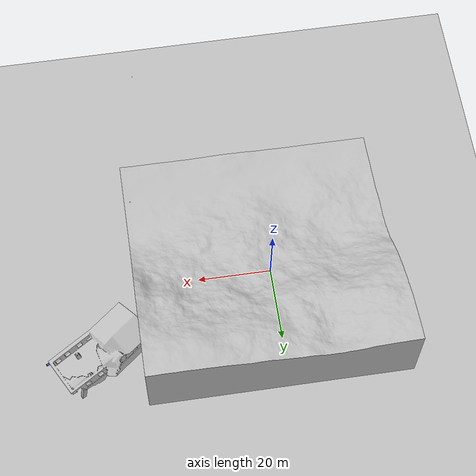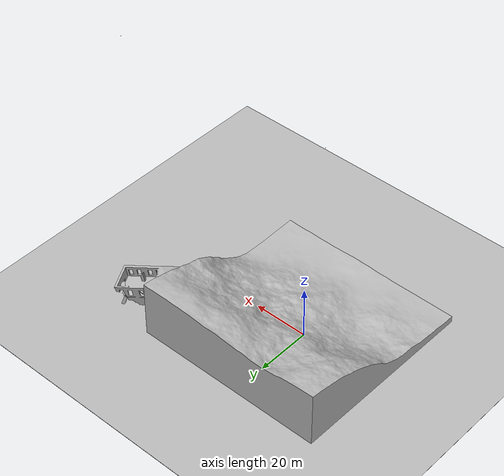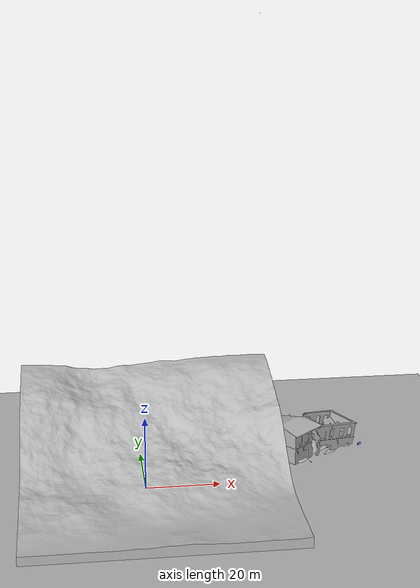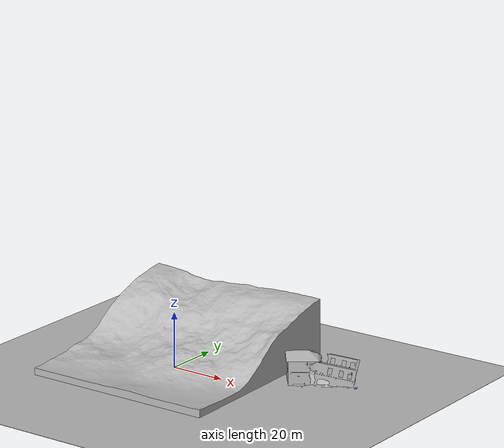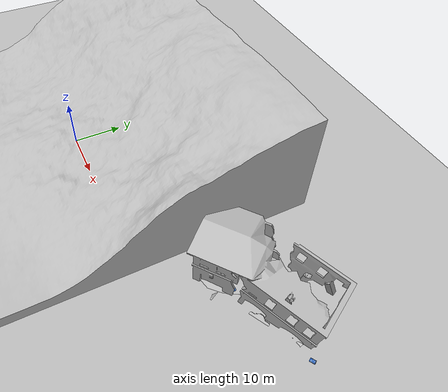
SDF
<sdf version="1.6">
 <world name="default">
  <light name="sun" type="directional">
   <pose>70 0 50 0.3 0.3 0</pose>
   <diffuse>1 1 1 1</diffuse>
   <specular>0.8 0.8 0.8 1</specular>
   <attenuation>
    <range>1000</range>
    <constant>0.9</constant>
    <linear>0.01</linear>
    <quadratic>0.001</quadratic>
   </attenuation>
   <direction>-0.5 0.1 -0.9</direction>
  </light>
  <light name="sun1" type="directional">
   <pose>70 0 50 0.3 0.3 0</pose>
   <diffuse>1 1 1 1</diffuse>
   <specular>0.8 0.8 0.8 1</specular>
   <attenuation>
    <range>1000</range>
    <constant>0.9</constant>
    <linear>0.01</linear>
    <quadratic>0.001</quadratic>
   </attenuation>
   <direction>-0.5 0.1 -0.9</direction>
  </light>
  <light name="sun2" type="directional">
   <pose>70 0 50 0.3 0.3 0</pose>
   <diffuse>1 1 1 1</diffuse>
   <specular>0.8 0.8 0.8 1</specular>
   <attenuation>
    <range>1000</range>
    <constant>0.9</constant>
    <linear>0.01</linear>
    <quadratic>0.001</quadratic>
   </attenuation>
   <direction>-0.5 0.1 -0.9</direction>
  </light>
  <model name="camera1">
   <static>true</static>
   <pose>30.77 -45.99 33.52 0 0.35 1.57</pose>
   <link name="link">
    <visual name="visual"><geometry><box><size>0.1 0.1 0.1</size></box></geometry></visual>
    <sensor name="my_camera1" type="camera">
     <camera>
      <save enabled="true"><path>/tmp/camera_save_sample1</path></save>
      <horizontal_fov>1.047</horizontal_fov>
      <image><width>1920</width><height>1080</height></image>
      <clip><near>0.1</near><far>500</far></clip>
     </camera>
     <always_on>1</always_on>
     <update_rate>10</update_rate>
    </sensor>
   </link>
  </model>
  <model name="camera2">
   <static>true</static>
   <pose>35.0 37.0 120.0 0 1.57 1.57</pose>
   <link name="link">
    <visual name="visual"><geometry><box><size>0.1 0.1 0.1</size></box></geometry></visual>
    <sensor name="my_camera2" type="camera">
     <camera>
      <save enabled="true"><path>/tmp/camera_save_sample2</path></save>
      <horizontal_fov>1.047</horizontal_fov>
      <image><width>1920</width><height>1080</height></image>
      <clip><near>0.1</near><far>500</far></clip>
     </camera>
     <always_on>1</always_on>
     <update_rate>10</update_rate>
    </sensor>
   </link>
  </model>
  <gravity>0 0 -9.8</gravity>
  <magnetic_field>6e-06 2.3e-05 -4.2e-05</magnetic_field>
  <atmosphere type="adiabatic"/>
  <physics name="default_physics" default="0" type="ode">
   <max_step_size>0.005</max_step_size>
   <real_time_factor>10</real_time_factor>
   <real_time_update_rate>0</real_time_update_rate>
  </physics>
  <scene>
   <ambient>0.4 0.4 0.4 1</ambient>
   <background>0.7 0.7 0.7 1</background>
   <shadows>true</shadows>
   <sky>
    <clouds>
     <speed>0.6</speed>
     <humidity>0.6</humidity>
     <mean_size>0.5</mean_size>
     <ambient>0.8 0.8 0.8 1</ambient>
    </clouds>
   </sky>
  </scene>
  <spherical_coordinates>
   <surface_model>EARTH_WGS84</surface_model>
   <latitude_deg>0</latitude_deg>
   <longitude_deg>0</longitude_deg>
   <elevation>0</elevation>
   <heading_deg>0</heading_deg>
  </spherical_coordinates>
  <include><uri>model://ground_plane1</uri><pose>35 35 0 0 0 0</pose></include>
  <include><uri>model://landslide_dae</uri><pose>0 0 -2 0 0 0</pose></include>
  <include><uri>model://collapsed_house</uri><pose>23 25 1 0 0 -1.57</pose></include>
  <include><uri>model://collapsed_fire_station</uri><pose>50 19.5 -1 0 0 0.67</pose></include>
  <include><name>gas1</name><uri>model://barrel</uri><pose>46.79 12.99 0.77 -1.42 0.0 0.0</pose></include>
  <include><name>gas2</name><uri>model://barrel</uri><pose>62.11 18.42 0.82 -1.32 0.71 -0.90</pose></include>
 </world>
</sdf>

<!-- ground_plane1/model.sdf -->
<sdf version="1.5">
  <model name="ground_plane1">
    <static>true</static>
    <link name="link">
      <collision name="collision">
        <geometry>
          <box>
            <size>50 50 .1</size>
          </box>
        </geometry>
        <surface>
          <friction>
            <ode>
              <mu>0</mu>
              <mu2>0</mu2>
            </ode>
          </friction>
        </surface>
      </collision>
      <visual name="visual">
        <cast_shadows>false</cast_shadows>
        <geometry>
          <box>
            <size>500 500 .1</size>
          </box>
        </geometry>
        <material>
          <script>
            <uri>model://ground_plane1/materials/scripts</uri>
            <uri>model://ground_plane1/materials/textures</uri>
            <name>vrc/ground_plane1</name>
          </script>
        </material>
      </visual>
    </link>
  </model>
</sdf>

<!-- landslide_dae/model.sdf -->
<sdf version='1.6'>
  <model name='landslide_dae'>
    <static>1</static>
    <allow_auto_disable>1</allow_auto_disable>
    <link name='terrain'>
      <self_collide>0</self_collide>
      <enable_wind>0</enable_wind>
      <kinematic>0</kinematic>
      <pose frame=''>0 0 0 0 0 0</pose>
      <gravity>1</gravity>
      <inertial>
        <mass>1</mass>
        <pose frame=''>0 0 0 0 0 0</pose>
        <inertia>
          <ixx>1</ixx>
          <ixy>0</ixy>
          <ixz>0</ixz>
          <iyy>1</iyy>
          <iyz>0</iyz>
          <izz>1</izz>
        </inertia>
      </inertial>

      <collision name='collision'>
        <laser_retro>0</laser_retro>
        <max_contacts>10</max_contacts>
        <pose frame=''>0 0 0 0 0 0</pose>
        <geometry>
          <mesh>
            <uri>model://landslide_dae/meshes/landslide_model.dae</uri>
            <scale>1 1 1</scale>
          </mesh>
        </geometry>
        <surface>
          <friction>
            <ode>
              <mu>100</mu>
              <mu2>50</mu2>
              <fdir1>0 0 0</fdir1>
              <slip1>0</slip1>
              <slip2>0</slip2>
            </ode>
            <torsional>
              <coefficient>1</coefficient>
              <patch_radius>0</patch_radius>
              <surface_radius>0</surface_radius>
              <use_patch_radius>1</use_patch_radius>
              <ode>
                <slip>0</slip>
              </ode>
            </torsional>
          </friction>
          <bounce>
            <restitution_coefficient>0</restitution_coefficient>
            <threshold>1e+06</threshold>
          </bounce>
          <contact>
            <collide_without_contact>0</collide_without_contact>
            <collide_without_contact_bitmask>1</collide_without_contact_bitmask>
            <collide_bitmask>1</collide_bitmask>
            <ode>
              <soft_cfm>0</soft_cfm>
              <soft_erp>0.2</soft_erp>
              <kp>1e+13</kp>
              <kd>1</kd>
              <max_vel>0.01</max_vel>
              <min_depth>0</min_depth>
            </ode>
            <bullet>
              <split_impulse>1</split_impulse>
              <split_impulse_penetration_threshold>-0.01</split_impulse_penetration_threshold>
              <soft_cfm>0</soft_cfm>
              <soft_erp>0.2</soft_erp>
              <kp>1e+13</kp>
              <kd>1</kd>
            </bullet>
          </contact>
        </surface>
      </collision>

      <visual name='visual'>
        <geometry>
          <mesh>
            <uri>model://landslide_dae/meshes/landslide_model.dae</uri>
            <scale>1 1 1</scale>
          </mesh>
        </geometry>
        <pose frame=''>0 0 0 0 0 0</pose>
        <transparency>0</transparency>
        <cast_shadows>1</cast_shadows>
      </visual>
    </link>
  </model>
</sdf>

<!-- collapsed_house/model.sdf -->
<sdf version='1.6'>
  <model name='collapsed_house'>
    <link name='link'>
      <self_collide>0</self_collide>
      <enable_wind>0</enable_wind>
      <kinematic>0</kinematic>
      <pose frame=''>0 0 0 0 -0 0</pose>
      <visual name='visual'>
        <geometry>
          <mesh>
            <scale>1.5 1.5 1.5</scale>
            <uri>model://collapsed_house/meshes/collapsed_house.dae</uri>
          </mesh>
        </geometry>
        <pose frame=''>0 0 0 0 -0 0</pose>
        <transparency>0</transparency>
        <cast_shadows>1</cast_shadows>
      </visual>
      <collision name='collision'>
        <laser_retro>0</laser_retro>
        <max_contacts>10</max_contacts>
        <pose frame=''>0 0 0 0 -0 0</pose>
        <geometry>
          <mesh>
            <uri>model://collapsed_house/meshes/collapsed_house.dae</uri>
            <scale>1.5 1.5 1.5</scale>
          </mesh>
        </geometry>
        <surface>
          <friction>
            <ode>
              <mu>1</mu>
              <mu2>1</mu2>
              <fdir1>0 0 0</fdir1>
              <slip1>0</slip1>
              <slip2>0</slip2>
            </ode>
            <torsional>
              <coefficient>1</coefficient>
              <patch_radius>0</patch_radius>
              <surface_radius>0</surface_radius>
              <use_patch_radius>1</use_patch_radius>
              <ode>
                <slip>0</slip>
              </ode>
            </torsional>
          </friction>
          <bounce>
            <restitution_coefficient>0</restitution_coefficient>
            <threshold>1e+06</threshold>
          </bounce>
          <contact>
            <collide_without_contact>0</collide_without_contact>
            <collide_without_contact_bitmask>1</collide_without_contact_bitmask>
            <collide_bitmask>1</collide_bitmask>
            <ode>
              <soft_cfm>0</soft_cfm>
              <soft_erp>0.2</soft_erp>
              <kp>1e+13</kp>
              <kd>1</kd>
              <max_vel>0.01</max_vel>
              <min_depth>0</min_depth>
            </ode>
            <bullet>
              <split_impulse>1</split_impulse>
              <split_impulse_penetration_threshold>-0.01</split_impulse_penetration_threshold>
              <soft_cfm>0</soft_cfm>
              <soft_erp>0.2</soft_erp>
              <kp>1e+13</kp>
              <kd>1</kd>
            </bullet>
          </contact>
        </surface>
      </collision>
    </link>
    <link name='link_0'>
      <inertial>
        <mass>0.0586522</mass>
        <inertia>
          <ixx>0.00308143</ixx>
          <ixy>0</ixy>
          <ixz>0</ixz>
          <iyy>0.012942</iyy>
          <iyz>0</iyz>
          <izz>0.00988712</izz>
        </inertia>
        <pose frame=''>0 0 0 0 -0 0</pose>
      </inertial>
      <pose frame=''>7.16592 -5.06526 1.47989 0 -0 1.57</pose>
      <self_collide>0</self_collide>
      <enable_wind>0</enable_wind>
      <kinematic>0</kinematic>
      <gravity>1</gravity>
      <visual name='visual'>
        <pose frame=''>0 0 0 0 -0 0</pose>
        <geometry>
          <box>
            <size>1.42132 0.052076 0.792297</size>
          </box>
        </geometry>
        <material>
          <lighting>1</lighting>
          <script>
            <uri>file://media/materials/scripts/gazebo.material</uri>
            <name>Gazebo/Black</name>
          </script>
          <shader type='vertex'>
            <normal_map>__default__</normal_map>
          </shader>
          <ambient>0.3 0.3 0.3 1</ambient>
          <diffuse>0.7 0.7 0.7 1</diffuse>
          <specular>0.01 0.01 0.01 1</specular>
          <emissive>0 0 0 1</emissive>
        </material>
        <transparency>0</transparency>
        <cast_shadows>1</cast_shadows>
      </visual>
      <collision name='collision'>
        <laser_retro>0</laser_retro>
        <max_contacts>10</max_contacts>
        <pose frame=''>0 0 0 0 -0 0</pose>
        <geometry>
          <box>
            <size>1.42132 0.052076 0.792297</size>
          </box>
        </geometry>
        <surface>
          <friction>
            <ode>
              <mu>1</mu>
              <mu2>1</mu2>
              <fdir1>0 0 0</fdir1>
              <slip1>0</slip1>
              <slip2>0</slip2>
            </ode>
            <torsional>
              <coefficient>1</coefficient>
              <patch_radius>0</patch_radius>
              <surface_radius>0</surface_radius>
              <use_patch_radius>1</use_patch_radius>
              <ode>
                <slip>0</slip>
              </ode>
            </torsional>
          </friction>
          <bounce>
            <restitution_coefficient>0</restitution_coefficient>
            <threshold>1e+06</threshold>
          </bounce>
          <contact>
            <collide_without_contact>0</collide_without_contact>
            <collide_without_contact_bitmask>1</collide_without_contact_bitmask>
            <collide_bitmask>1</collide_bitmask>
            <ode>
              <soft_cfm>0</soft_cfm>
              <soft_erp>0.2</soft_erp>
              <kp>1e+13</kp>
              <kd>1</kd>
              <max_vel>0.01</max_vel>
              <min_depth>0</min_depth>
            </ode>
            <bullet>
              <split_impulse>1</split_impulse>
              <split_impulse_penetration_threshold>-0.01</split_impulse_penetration_threshold>
              <soft_cfm>0</soft_cfm>
              <soft_erp>0.2</soft_erp>
              <kp>1e+13</kp>
              <kd>1</kd>
            </bullet>
          </contact>
        </surface>
      </collision>
    </link>
    <link name='link_0_clone'>
      <inertial>
        <mass>0.211219</mass>
        <inertia>
          <ixx>0.0141636</ixx>
          <ixy>0</ixy>
          <ixz>0</ixz>
          <iyy>0.375073</iyy>
          <iyz>0</iyz>
          <izz>0.361005</izz>
        </inertia>
        <pose frame=''>0 0 0 0 -0 0</pose>
      </inertial>
      <pose frame=''>4.86715 -5.76812 1.42599 0 -0 3.14</pose>
      <self_collide>0</self_collide>
      <enable_wind>0</enable_wind>
      <kinematic>0</kinematic>
      <gravity>1</gravity>
      <visual name='visual'>
        <pose frame=''>0 0 0 0 -0 0</pose>
        <geometry>
          <box>
            <size>4.52848 0.052076 0.895526</size>
          </box>
        </geometry>
        <material>
          <lighting>1</lighting>
          <script>
            <uri>file://media/materials/scripts/gazebo.material</uri>
            <name>Gazebo/Black</name>
          </script>
          <shader type='pixel'>
            <normal_map>__default__</normal_map>
          </shader>
          <ambient>0 0 0 1</ambient>
          <diffuse>0 0 0 1</diffuse>
          <specular>0.1 0.1 0.1 1</specular>
          <emissive>0 0 0 1</emissive>
        </material>
        <transparency>0</transparency>
        <cast_shadows>1</cast_shadows>
      </visual>
      <collision name='collision'>
        <laser_retro>0</laser_retro>
        <max_contacts>10</max_contacts>
        <pose frame=''>0 0 0 0 -0 0</pose>
        <geometry>
          <box>
            <size>4.52848 0.052076 0.895526</size>
          </box>
        </geometry>
        <surface>
          <friction>
            <ode>
              <mu>1</mu>
              <mu2>1</mu2>
              <fdir1>0 0 0</fdir1>
              <slip1>0</slip1>
              <slip2>0</slip2>
            </ode>
            <torsional>
              <coefficient>1</coefficient>
              <patch_radius>0</patch_radius>
              <surface_radius>0</surface_radius>
              <use_patch_radius>1</use_patch_radius>
              <ode>
                <slip>0</slip>
              </ode>
            </torsional>
          </friction>
          <bounce>
            <restitution_coefficient>0</restitution_coefficient>
            <threshold>1e+06</threshold>
          </bounce>
          <contact>
            <collide_without_contact>0</collide_without_contact>
            <collide_without_contact_bitmask>1</collide_without_contact_bitmask>
            <collide_bitmask>1</collide_bitmask>
            <ode>
              <soft_cfm>0</soft_cfm>
              <soft_erp>0.2</soft_erp>
              <kp>1e+13</kp>
              <kd>1</kd>
              <max_vel>0.01</max_vel>
              <min_depth>0</min_depth>
            </ode>
            <bullet>
              <split_impulse>1</split_impulse>
              <split_impulse_penetration_threshold>-0.01</split_impulse_penetration_threshold>
              <soft_cfm>0</soft_cfm>
              <soft_erp>0.2</soft_erp>
              <kp>1e+13</kp>
              <kd>1</kd>
            </bullet>
          </contact>
        </surface>
      </collision>
    </link>
    <link name='link_0_clone_0'>
      <inertial>
        <mass>0.0897248</mass>
        <inertia>
          <ixx>0.00496172</ixx>
          <ixy>0</ixy>
          <ixz>0</ixz>
          <iyy>0.0385165</iyy>
          <iyz>0</iyz>
          <izz>0.0335953</izz>
        </inertia>
        <pose frame=''>0 0 0 0 -0 0</pose>
      </inertial>
      <pose frame=''>5.97433 4.32289 1.47091 0 -0 3.14</pose>
      <self_collide>0</self_collide>
      <enable_wind>0</enable_wind>
      <kinematic>0</kinematic>
      <gravity>1</gravity>
      <visual name='visual'>
        <pose frame=''>0 0 0 0 -0 0</pose>
        <geometry>
          <box>
            <size>2.11906 0.052076 0.812945</size>
          </box>
        </geometry>
        <material>
          <lighting>1</lighting>
          <script>
            <uri>file://media/materials/scripts/gazebo.material</uri>
            <name>Gazebo/Black</name>
          </script>
          <shader type='pixel'>
            <normal_map>__default__</normal_map>
          </shader>
          <ambient>0.3 0.3 0.3 1</ambient>
          <diffuse>0.7 0.7 0.7 1</diffuse>
          <specular>0.01 0.01 0.01 1</specular>
          <emissive>0 0 0 1</emissive>
        </material>
        <transparency>0</transparency>
        <cast_shadows>1</cast_shadows>
      </visual>
      <collision name='collision'>
        <laser_retro>0</laser_retro>
        <max_contacts>10</max_contacts>
        <pose frame=''>0 0 0 0 -0 0</pose>
        <geometry>
          <box>
            <size>2.11906 0.052076 0.812945</size>
          </box>
        </geometry>
        <surface>
          <friction>
            <ode>
              <mu>1</mu>
              <mu2>1</mu2>
              <fdir1>0 0 0</fdir1>
              <slip1>0</slip1>
              <slip2>0</slip2>
            </ode>
            <torsional>
              <coefficient>1</coefficient>
              <patch_radius>0</patch_radius>
              <surface_radius>0</surface_radius>
              <use_patch_radius>1</use_patch_radius>
              <ode>
                <slip>0</slip>
              </ode>
            </torsional>
          </friction>
          <bounce>
            <restitution_coefficient>0</restitution_coefficient>
            <threshold>1e+06</threshold>
          </bounce>
          <contact>
            <collide_without_contact>0</collide_without_contact>
            <collide_without_contact_bitmask>1</collide_without_contact_bitmask>
            <collide_bitmask>1</collide_bitmask>
            <ode>
              <soft_cfm>0</soft_cfm>
              <soft_erp>0.2</soft_erp>
              <kp>1e+13</kp>
              <kd>1</kd>
              <max_vel>0.01</max_vel>
              <min_depth>0</min_depth>
            </ode>
            <bullet>
              <split_impulse>1</split_impulse>
              <split_impulse_penetration_threshold>-0.01</split_impulse_penetration_threshold>
              <soft_cfm>0</soft_cfm>
              <soft_erp>0.2</soft_erp>
              <kp>1e+13</kp>
              <kd>1</kd>
            </bullet>
          </contact>
        </surface>
      </collision>
    </link>
    <link name='link_0_clone_0_clone'>
      <inertial>
        <mass>0.0897248</mass>
        <inertia>
          <ixx>0.00496172</ixx>
          <ixy>0</ixy>
          <ixz>0</ixz>
          <iyy>0.0385165</iyy>
          <iyz>0</iyz>
          <izz>0.0335953</izz>
        </inertia>
        <pose frame=''>0 0 0 0 -0 0</pose>
      </inertial>
      <pose frame=''>7.16719 3.30743 1.47091 0 0 -1.57319</pose>
      <self_collide>0</self_collide>
      <enable_wind>0</enable_wind>
      <kinematic>0</kinematic>
      <gravity>1</gravity>
      <visual name='visual'>
        <pose frame=''>0 0 0 0 -0 0</pose>
        <geometry>
          <box>
            <size>2.11906 0.052076 0.812945</size>
          </box>
        </geometry>
        <material>
          <lighting>1</lighting>
          <script>
            <uri>file://media/materials/scripts/gazebo.material</uri>
            <name>Gazebo/Black</name>
          </script>
          <shader type='pixel'>
            <normal_map>__default__</normal_map>
          </shader>
          <ambient>0 0 0 1</ambient>
          <diffuse>0 0 0 1</diffuse>
          <specular>0.1 0.1 0.1 1</specular>
          <emissive>0 0 0 1</emissive>
        </material>
        <transparency>0</transparency>
        <cast_shadows>1</cast_shadows>
      </visual>
      <collision name='collision'>
        <laser_retro>0</laser_retro>
        <max_contacts>10</max_contacts>
        <pose frame=''>0 0 0 0 -0 0</pose>
        <geometry>
          <box>
            <size>2.11906 0.052076 0.812945</size>
          </box>
        </geometry>
        <surface>
          <friction>
            <ode>
              <mu>1</mu>
              <mu2>1</mu2>
              <fdir1>0 0 0</fdir1>
              <slip1>0</slip1>
              <slip2>0</slip2>
            </ode>
            <torsional>
              <coefficient>1</coefficient>
              <patch_radius>0</patch_radius>
              <surface_radius>0</surface_radius>
              <use_patch_radius>1</use_patch_radius>
              <ode>
                <slip>0</slip>
              </ode>
            </torsional>
          </friction>
          <bounce>
            <restitution_coefficient>0</restitution_coefficient>
            <threshold>1e+06</threshold>
          </bounce>
          <contact>
            <collide_without_contact>0</collide_without_contact>
            <collide_without_contact_bitmask>1</collide_without_contact_bitmask>
            <collide_bitmask>1</collide_bitmask>
            <ode>
              <soft_cfm>0</soft_cfm>
              <soft_erp>0.2</soft_erp>
              <kp>1e+13</kp>
              <kd>1</kd>
              <max_vel>0.01</max_vel>
              <min_depth>0</min_depth>
            </ode>
            <bullet>
              <split_impulse>1</split_impulse>
              <split_impulse_penetration_threshold>-0.01</split_impulse_penetration_threshold>
              <soft_cfm>0</soft_cfm>
              <soft_erp>0.2</soft_erp>
              <kp>1e+13</kp>
              <kd>1</kd>
            </bullet>
          </contact>
        </surface>
      </collision>
    </link>
    <static>1</static>
    <allow_auto_disable>1</allow_auto_disable>
  </model>
</sdf>

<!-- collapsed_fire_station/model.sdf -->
<sdf version='1.6'>
  <model name='collapsed_fire_station'>
    <link name='link'>
      <self_collide>0</self_collide>
      <enable_wind>0</enable_wind>
      <kinematic>0</kinematic>
      <pose frame=''>0 0 0 0 -0 0</pose>
      <visual name='visual'>
        <geometry>
          <mesh>
            <uri>model://collapsed_fire_station/meshes/collapsed_fire_station.dae</uri>
          </mesh>
        </geometry>
        <pose frame=''>0 0 0 0 -0 0</pose>
        <transparency>0</transparency>
        <cast_shadows>1</cast_shadows>
      </visual>
      <collision name='collision'>
        <laser_retro>0</laser_retro>
        <max_contacts>10</max_contacts>
        <pose frame=''>0 0 0 0 -0 0</pose>
        <geometry>
          <mesh>
            <uri>model://collapsed_fire_station/meshes/collapsed_fire_station.dae</uri>
            <scale>1 1 1</scale>
          </mesh>
        </geometry>
        <surface>
          <friction>
            <ode>
              <mu>1</mu>
              <mu2>1</mu2>
              <fdir1>0 0 0</fdir1>
              <slip1>0</slip1>
              <slip2>0</slip2>
            </ode>
            <torsional>
              <coefficient>1</coefficient>
              <patch_radius>0</patch_radius>
              <surface_radius>0</surface_radius>
              <use_patch_radius>1</use_patch_radius>
              <ode>
                <slip>0</slip>
              </ode>
            </torsional>
          </friction>
          <bounce>
            <restitution_coefficient>0</restitution_coefficient>
            <threshold>1e+06</threshold>
          </bounce>
          <contact>
            <collide_without_contact>0</collide_without_contact>
            <collide_without_contact_bitmask>1</collide_without_contact_bitmask>
            <collide_bitmask>1</collide_bitmask>
            <ode>
              <soft_cfm>0</soft_cfm>
              <soft_erp>0.2</soft_erp>
              <kp>1e+13</kp>
              <kd>1</kd>
              <max_vel>0.01</max_vel>
              <min_depth>0</min_depth>
            </ode>
            <bullet>
              <split_impulse>1</split_impulse>
              <split_impulse_penetration_threshold>-0.01</split_impulse_penetration_threshold>
              <soft_cfm>0</soft_cfm>
              <soft_erp>0.2</soft_erp>
              <kp>1e+13</kp>
              <kd>1</kd>
            </bullet>
          </contact>
        </surface>
      </collision>
    </link>
    <link name='link_1'>
      <inertial>
        <mass>1.43754</mass>
        <inertia>
          <ixx>6.70119</ixx>
          <ixy>0</ixy>
          <ixz>0</ixz>
          <iyy>4.05151</iyy>
          <iyz>0</iyz>
          <izz>2.65036</izz>
        </inertia>
        <pose frame=''>0 0 0 0 -0 0</pose>
      </inertial>
      <pose frame=''>-10.0033 -3.10849 1.5 0 0 -1.57426</pose>
      <self_collide>0</self_collide>
      <enable_wind>0</enable_wind>
      <kinematic>0</kinematic>
      <visual name='visual'>
        <pose frame=''>0 0 0 0 -0 0</pose>
        <geometry>
          <box>
            <size>0.053193 4.70333 5.81528</size>
          </box>
        </geometry>
        <material>
          <lighting>1</lighting>
          <script>
            <uri>file://media/materials/scripts/gazebo.material</uri>
            <name>Gazebo/Grey</name>
          </script>
        </material>
        <transparency>0</transparency>
        <cast_shadows>1</cast_shadows>
      </visual>
      <collision name='collision'>
        <laser_retro>0</laser_retro>
        <max_contacts>10</max_contacts>
        <pose frame=''>0 0 0 0 -0 0</pose>
        <geometry>
          <box>
            <size>0.053193 4.70333 5.81528</size>
          </box>
        </geometry>
        <surface>
          <friction>
            <ode>
              <mu>1</mu>
              <mu2>1</mu2>
              <fdir1>0 0 0</fdir1>
              <slip1>0</slip1>
              <slip2>0</slip2>
            </ode>
            <torsional>
              <coefficient>1</coefficient>
              <patch_radius>0</patch_radius>
              <surface_radius>0</surface_radius>
              <use_patch_radius>1</use_patch_radius>
              <ode>
                <slip>0</slip>
              </ode>
            </torsional>
          </friction>
          <bounce>
            <restitution_coefficient>0</restitution_coefficient>
            <threshold>1e+06</threshold>
          </bounce>
          <contact>
            <collide_without_contact>0</collide_without_contact>
            <collide_without_contact_bitmask>1</collide_without_contact_bitmask>
            <collide_bitmask>1</collide_bitmask>
            <ode>
              <soft_cfm>0</soft_cfm>
              <soft_erp>0.2</soft_erp>
              <kp>1e+13</kp>
              <kd>1</kd>
              <max_vel>0.01</max_vel>
              <min_depth>0</min_depth>
            </ode>
            <bullet>
              <split_impulse>1</split_impulse>
              <split_impulse_penetration_threshold>-0.01</split_impulse_penetration_threshold>
              <soft_cfm>0</soft_cfm>
              <soft_erp>0.2</soft_erp>
              <kp>1e+13</kp>
              <kd>1</kd>
            </bullet>
          </contact>
        </surface>
      </collision>
    </link>
    <static>1</static>
    <allow_auto_disable>1</allow_auto_disable>
  </model>
</sdf>

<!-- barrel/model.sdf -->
<sdf version="1.6">
  <model name="barrel">
    <static>true</static>
    <link name="link">
      <collision name="collision">
        <geometry>
          <mesh>
            <scale>1 1 1</scale>
            <uri>model://barrel/meshes/barrel.dae</uri>
          </mesh>
        </geometry>
      </collision>
      <visual name="visual">
        <geometry>
          <mesh>
            <scale>1 1 1</scale>
            <uri>model://barrel/meshes/barrel.dae</uri>
          </mesh>
        </geometry>
      </visual>
    </link>
  </model>
</sdf>
